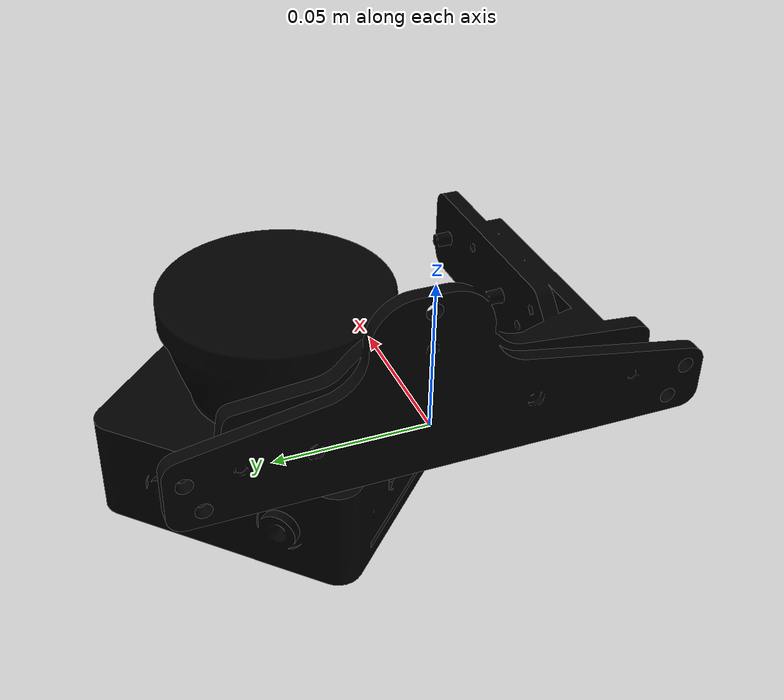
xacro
<?xml version="1.0" encoding="UTF-8"?>
<robot xmlns:xacro="http://wiki.ros.org/xacro" name="nanoscan3">

  <!-- Use this if parameters are set from the launch file, otherwise delete -->
  <xacro:arg name="mounting_kit" default="true" />
  <xacro:arg name="sim_gazebo" default="false" />

  <!-- create link fixed to the "world" -->
  <link name="world" />

  <!-- Load robot's macro with parameters -->
  <!-- set prefix if multiple robots are used -->
  <xacro:include filename="$(find sick_safetyscanners2)/description/robots/tmr_v02/nanoscan3/nanoscan3_macro.xacro"/>
  <xacro:property name="mounting_kit" value="$(arg mounting_kit)"/>
  <xacro:nanoscan3
    name="nanoscan3"
    parent="world"
    mounting_kit="${mounting_kit}"
    ros_topic="/nanoscan3_topic"
    update_rate="50.0"
    min_angle="${radians(-45)}"
    max_angle="${radians(225)}"
    min_range="0.05"
    max_range="10.0"
    gaussian_noise="0.006"
    max_beams="500">
    <origin xyz="0 0 0" rpy="0 0 0" />
  </xacro:nanoscan3>

</robot>

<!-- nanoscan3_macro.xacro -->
<robot xmlns:xacro="http://wiki.ros.org/xacro">

  <xacro:include filename="$(find franka_description)/robots/tmr_v02/nanoscan3/common.xacro" />
  <xacro:include filename="$(find franka_description)/robots/tmr_v02/nanoscan3/nanoscan3/gazebo_macro.xacro" />

  <!-- joint offsets when mounted on frame -->
  <xacro:property name="base_x" value="0.0803"/>
  <xacro:property name="base_y" value="-0.053"/>

  <xacro:property name="sensor_y" value="${-base_y}"/>
  <xacro:property name="sensor_z" value="0.0315"/>
  <xacro:property name="sensor_rot_z" value="0"/>

  <xacro:macro name="nanoscan3"
    params="
      name
      parent
      mounting_kit
      ros_topic
      update_rate
      min_angle
      max_angle
      min_range
      max_range
      gaussian_noise:=0.006
      max_beams:=540
      *origin
    ">

    <xacro:if value="${mounting_kit}">
      <!-- MOUNT -->
      <joint name="${name}_mount_joint" type="fixed">
        <xacro:insert_block name="origin" />
        <parent link="${parent}" />
        <child link="${name}_mount" />
      </joint>

      <link name="${name}_mount">
        <!-- Default inertial for Gazebo - copy and edit block from 'common.xacro'
            to get more realistic behavior -->
        <xacro:box_inertial x="0.1175" y="0.1006" z="0.05" mass="0.33">
          <origin xyz="0 0 -0.025" rpy="0 0 0"/>
        </xacro:box_inertial>
        <visual>
          <geometry>
            <mesh filename="file://$(find franka_description)/meshes/nanoscan3/MountingKit_2a.dae"/>
          </geometry>
          <material name="black">
            <color rgba="0.0 0.0 0.0 1.0"/>
          </material>
        </visual>
        <collision>
          <geometry>
            <mesh filename="file://$(find franka_description)/meshes/nanoscan3/MountingKit_2a_collision.stl"/>
          </geometry>
        </collision>
      </link>
      <!-- SENSOR BASE when mounted -->
      <joint name="${name}_base_joint" type="fixed">
        <origin xyz="${base_x} ${base_y} 0"/>
        <parent link="${name}_mount" />
        <child link="${name}_base" />
      </joint>
    </xacro:if>

    <xacro:unless value="${mounting_kit}">
      <!-- SENSOR BASE without mount-->
      <joint name="${name}_base_joint" type="fixed">
        <xacro:insert_block name="origin" />
        <parent link="${parent}" />
        <child link="${name}_base" />
      </joint>
    </xacro:unless>

    <link name="${name}_base">
      <origin xyz="${-base_x} ${-base_y} 0"/>
    </link>

  <!-- SENSOR FRAME -->
    <joint name="${name}_joint" type="fixed">
      <parent link="${name}_base" />
      <child link="${name}" />
      <origin xyz="0 0 0" rpy="0 0 ${sensor_rot_z}"/>
    </joint>

    <link name="${name}">
      <!-- Default inertial for Gazebo - copy and edit block from 'common.xacro'
           to get more realistic behavior -->
      <xacro:cylinder_inertial radius="0.43" length="0.03" mass="0.33">
        <origin xyz="0 0 -0.015" rpy="0 0 0"/>
      </xacro:cylinder_inertial>
      <visual>
        <!-- These values were determined empirically -->
        <origin xyz="0 0.07615 ${-sensor_z-0.001}" rpy="0 0 ${radians(-90)}" />
        <geometry>
          <mesh filename="file://$(find franka_description)/meshes/nanoscan3/NANS3.dae"/>
        </geometry>
        <material name="black">
          <color rgba="0.0 0.0 0.0 1.0"/>
        </material>
      </visual>
      <collision>
        <!-- These values were determined empirically -->
        <origin xyz="0 0.07615 ${-sensor_z-0.001}" rpy="0 0 ${radians(-90)}" />
        <geometry>
          <mesh filename="file://$(find franka_description)/meshes/nanoscan3/NANS3_collision.stl"/>
        </geometry>
      </collision>
    </link>

    <!-- gazebo integration -->
    <xacro:sick_safetyscanners2_gazebo
      name="${name}"
      link="${name}"
      ros_topic="${ros_topic}"
      update_rate="${update_rate}"
      min_angle="${min_angle}"
      max_angle="${max_angle}"
      min_range="${min_range}"
      max_range="${max_range}"
      gaussian_noise="${gaussian_noise}"
      max_beams="${max_beams}">
    </xacro:sick_safetyscanners2_gazebo>

  </xacro:macro>
</robot>
